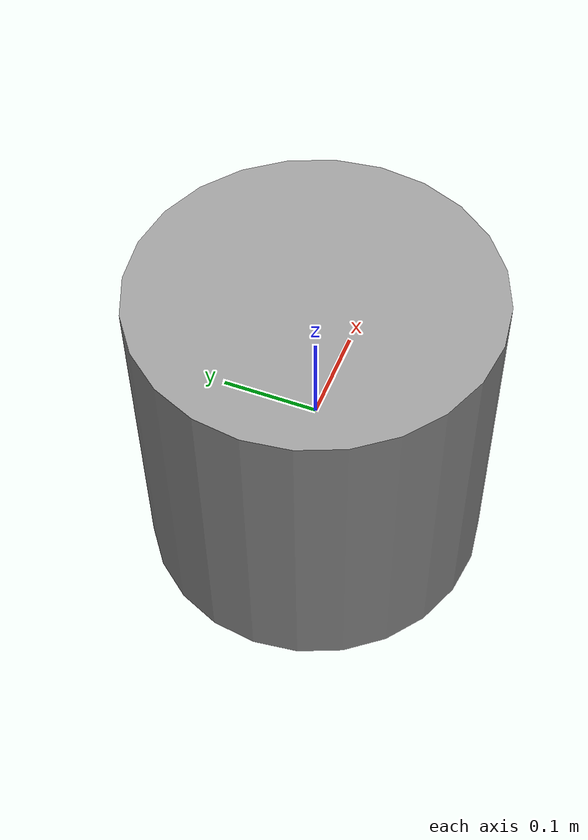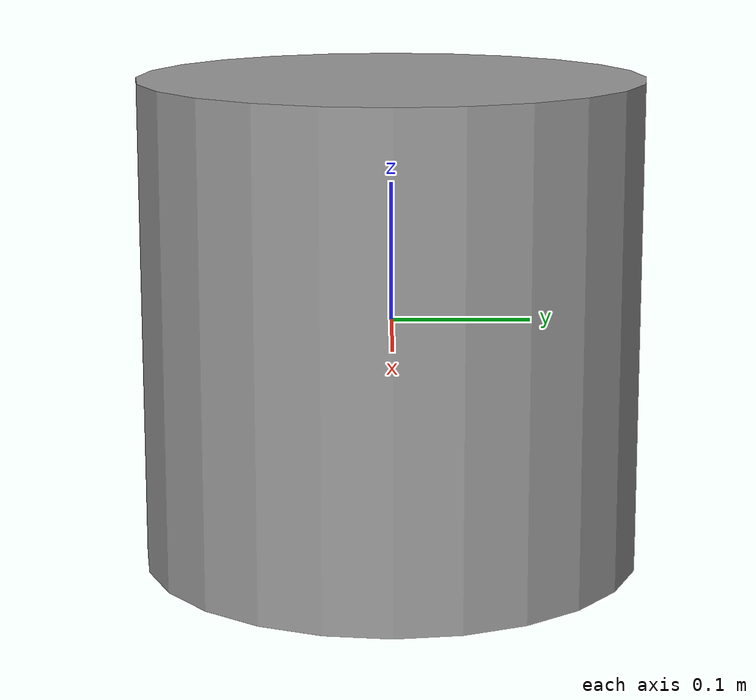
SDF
<?xml version="1.0"?>
<sdf version="1.6">
  <model name="cylinder_obstacle">
    <static>false</static>
    <link name="link">
      <collision name="collision">
        <geometry>
          <cylinder>
            <radius>0.18</radius>
            <length>0.35</length>
          </cylinder>
        </geometry>
      </collision>
      <visual name="visual">
        <geometry>
          <cylinder>
            <radius>0.18</radius>
            <length>0.35</length>
          </cylinder>
        </geometry>
        <material>
          <ambient>0.6 0.6 0.6 1</ambient>
          <diffuse>0.6 0.6 0.6 1</diffuse>
        </material>
      </visual>
    </link>
  </model>
</sdf>
